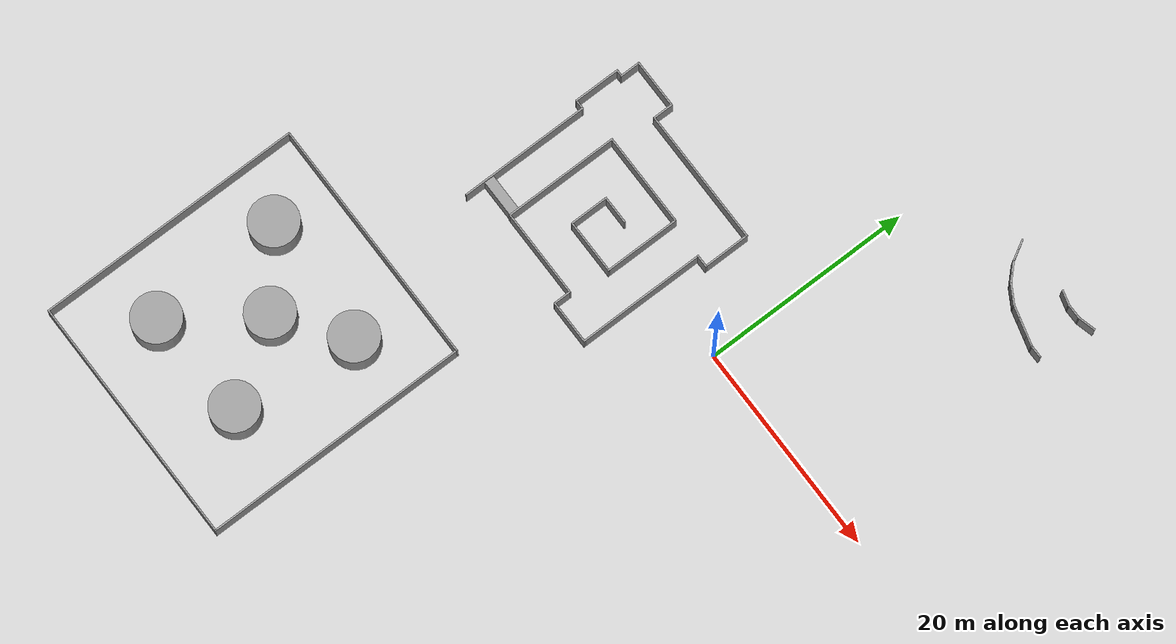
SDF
<sdf version="1.7">
 <world name="default">
  <model name="ground_plane">
   <static>1</static>
   <link name="link">
    <collision name="collision">
     <geometry><plane><normal>0 0 1</normal><size>100 100</size></plane></geometry>
     <surface><friction><ode><mu>100</mu><mu2>50</mu2></ode></friction></surface>
    </collision>
    <visual name="visual">
     <cast_shadows>0</cast_shadows>
     <geometry><plane><normal>0 0 1</normal><size>100 100</size></plane></geometry>
     <material>
      <script><uri>file://media/materials/scripts/gazebo.material</uri><name>Gazebo/Grey</name></script>
     </material>
    </visual>
   </link>
  </model>
  <model name="map1-Scale2.5">
   <pose>-15.2546 0.847586 0 0 -0 0</pose>
   <link name="Wall_100">
    <collision name="Wall_100_Collision">
     <geometry><box><size>7.25 0.15 2.5</size></box></geometry>
     <pose>0 0 1.25 0 -0 0</pose>
    </collision>
    <visual name="Wall_100_Visual">
     <pose>0 0 1.25 0 -0 0</pose>
     <geometry><box><size>7.25 0.15 2.5</size></box></geometry>
     <material>
      <script><uri>file://media/materials/scripts/gazebo.material</uri><name>Gazebo/Grey</name></script>
      <ambient>1 1 1 1</ambient>
     </material>
     <meta><layer>0</layer></meta>
    </visual>
    <pose>4.325 -0.125 0 0 -0 -1.5708</pose>
   </link>
   <link name="Wall_101">
    <collision name="Wall_101_Collision">
     <geometry><box><size>5.25 0.15 2.5</size></box></geometry>
     <pose>0 0 1.25 0 -0 0</pose>
    </collision>
    <visual name="Wall_101_Visual">
     <pose>0 0 1.25 0 -0 0</pose>
     <geometry><box><size>5.25 0.15 2.5</size></box></geometry>
     <material>
      <script><uri>file://media/materials/scripts/gazebo.material</uri><name>Gazebo/Grey</name></script>
      <ambient>1 1 1 1</ambient>
     </material>
     <meta><layer>0</layer></meta>
    </visual>
    <pose>1.775 -3.675 0 0 -0 3.14159</pose>
   </link>
   <link name="Wall_102">
    <collision name="Wall_102_Collision">
     <geometry><box><size>3.75 0.15 2.5</size></box></geometry>
     <pose>0 0 1.25 0 -0 0</pose>
    </collision>
    <visual name="Wall_102_Visual">
     <pose>0 0 1.25 0 -0 0</pose>
     <geometry><box><size>3.75 0.15 2.5</size></box></geometry>
     <material>
      <script><uri>file://media/materials/scripts/gazebo.material</uri><name>Gazebo/Grey</name></script>
      <ambient>1 1 1 1</ambient>
     </material>
     <meta><layer>0</layer></meta>
    </visual>
    <pose>-0.775 -1.875 0 0 -0 1.5708</pose>
   </link>
   <link name="Wall_103">
    <collision name="Wall_103_Collision">
     <geometry><box><size>2.75 0.15 2.5</size></box></geometry>
     <pose>0 0 1.25 0 -0 0</pose>
    </collision>
    <visual name="Wall_103_Visual">
     <pose>0 0 1.25 0 -0 0</pose>
     <geometry><box><size>2.75 0.15 2.5</size></box></geometry>
     <material>
      <script><uri>file://media/materials/scripts/gazebo.material</uri><name>Gazebo/Grey</name></script>
      <ambient>1 1 1 1</ambient>
     </material>
     <meta><layer>0</layer></meta>
    </visual>
    <pose>0.525 -0.075 0 0 -0 0</pose>
   </link>
   <link name="Wall_84">
    <collision name="Wall_84_Collision">
     <geometry><box><size>12.5 0.15 2.5</size></box></geometry>
     <pose>0 0 1.25 0 -0 0</pose>
    </collision>
    <visual name="Wall_84_Visual">
     <pose>0 0 1.25 0 -0 0</pose>
     <geometry><box><size>12.5 0.15 2.5</size></box></geometry>
     <material>
      <script><uri>file://media/materials/scripts/gazebo.material</uri><name>Gazebo/Grey</name></script>
      <ambient>1 1 1 1</ambient>
     </material>
     <meta><layer>0</layer></meta>
    </visual>
    <pose>-8.175 -3.1 0 0 -0 1.5708</pose>
   </link>
   <link name="Wall_85">
    <collision name="Wall_85_Collision">
     <geometry><box><size>1 0.15 2.5</size></box></geometry>
     <pose>0 0 1.25 0 -0 0</pose>
    </collision>
    <visual name="Wall_85_Visual">
     <pose>0 0 1.25 0 -0 0</pose>
     <geometry><box><size>1 0.15 2.5</size></box></geometry>
     <material>
      <script><uri>file://media/materials/scripts/gazebo.material</uri><name>Gazebo/Grey</name></script>
      <ambient>1 1 1 1</ambient>
     </material>
     <meta><layer>0</layer></meta>
    </visual>
    <pose>-8.6 3.075 0 0 -0 3.14159</pose>
   </link>
   <link name="Wall_86">
    <collision name="Wall_86_Collision">
     <geometry><box><size>4.5 0.15 2.5</size></box></geometry>
     <pose>0 0 1.25 0 -0 0</pose>
    </collision>
    <visual name="Wall_86_Visual">
     <pose>0 0 1.25 0 -0 0</pose>
     <geometry><box><size>4.5 0.15 2.5</size></box></geometry>
     <material>
      <script><uri>file://media/materials/scripts/gazebo.material</uri><name>Gazebo/Grey</name></script>
      <ambient>1 1 1 1</ambient>
     </material>
     <meta><layer>0</layer></meta>
    </visual>
    <pose>-9.025 5.25 0 0 -0 1.5708</pose>
   </link>
   <link name="Wall_87">
    <collision name="Wall_87_Collision">
     <geometry><box><size>0.75 0.15 2.5</size></box></geometry>
     <pose>0 0 1.25 0 -0 0</pose>
    </collision>
    <visual name="Wall_87_Visual">
     <pose>0 0 1.25 0 -0 0</pose>
     <geometry><box><size>0.75 0.15 2.5</size></box></geometry>
     <material>
      <script><uri>file://media/materials/scripts/gazebo.material</uri><name>Gazebo/Grey</name></script>
      <ambient>1 1 1 1</ambient>
     </material>
     <meta><layer>0</layer></meta>
    </visual>
    <pose>-8.725 7.425 0 0 -0 0</pose>
   </link>
   <link name="Wall_88">
    <collision name="Wall_88_Collision">
     <geometry><box><size>2 0.15 2.5</size></box></geometry>
     <pose>0 0 1.25 0 -0 0</pose>
    </collision>
    <visual name="Wall_88_Visual">
     <pose>0 0 1.25 0 -0 0</pose>
     <geometry><box><size>2 0.15 2.5</size></box></geometry>
     <material>
      <script><uri>file://media/materials/scripts/gazebo.material</uri><name>Gazebo/Grey</name></script>
      <ambient>1 1 1 1</ambient>
     </material>
     <meta><layer>0</layer></meta>
    </visual>
    <pose>-8.425 8.35 0 0 -0 1.5708</pose>
   </link>
   <link name="Wall_89">
    <collision name="Wall_89_Collision">
     <geometry><box><size>4.75 0.15 2.5</size></box></geometry>
     <pose>0 0 1.25 0 -0 0</pose>
    </collision>
    <visual name="Wall_89_Visual">
     <pose>0 0 1.25 0 -0 0</pose>
     <geometry><box><size>4.75 0.15 2.5</size></box></geometry>
     <material>
      <script><uri>file://media/materials/scripts/gazebo.material</uri><name>Gazebo/Grey</name></script>
      <ambient>1 1 1 1</ambient>
     </material>
     <meta><layer>0</layer></meta>
    </visual>
    <pose>-6.125 9.275 0 0 -0 0</pose>
   </link>
   <link name="Wall_90">
    <collision name="Wall_90_Collision">
     <geometry><box><size>2 0.15 2.5</size></box></geometry>
     <pose>0 0 1.25 0 -0 0</pose>
    </collision>
    <visual name="Wall_90_Visual">
     <pose>0 0 1.25 0 -0 0</pose>
     <geometry><box><size>2 0.15 2.5</size></box></geometry>
     <material>
      <script><uri>file://media/materials/scripts/gazebo.material</uri><name>Gazebo/Grey</name></script>
      <ambient>1 1 1 1</ambient>
     </material>
     <meta><layer>0</layer></meta>
    </visual>
    <pose>-3.825 8.35 0 0 -0 -1.5708</pose>
   </link>
   <link name="Wall_91">
    <collision name="Wall_91_Collision">
     <geometry><box><size>13 0.15 2.5</size></box></geometry>
     <pose>0 0 1.25 0 -0 0</pose>
    </collision>
    <visual name="Wall_91_Visual">
     <pose>0 0 1.25 0 -0 0</pose>
     <geometry><box><size>13 0.15 2.5</size></box></geometry>
     <material>
      <script><uri>file://media/materials/scripts/gazebo.material</uri><name>Gazebo/Grey</name></script>
      <ambient>1 1 1 1</ambient>
     </material>
     <meta><layer>0</layer></meta>
    </visual>
    <pose>2.6 7.425 0 0 -0 0</pose>
   </link>
   <link name="Wall_92">
    <collision name="Wall_92_Collision">
     <geometry><box><size>4.5 0.15 2.5</size></box></geometry>
     <pose>0 0 1.25 0 -0 0</pose>
    </collision>
    <visual name="Wall_92_Visual">
     <pose>0 0 1.25 0 -0 0</pose>
     <geometry><box><size>4.5 0.15 2.5</size></box></geometry>
     <material>
      <script><uri>file://media/materials/scripts/gazebo.material</uri><name>Gazebo/Grey</name></script>
      <ambient>1 1 1 1</ambient>
     </material>
     <meta><layer>0</layer></meta>
    </visual>
    <pose>9.025 5.25 0 0 -0 -1.5708</pose>
   </link>
   <link name="Wall_93">
    <collision name="Wall_93_Collision">
     <geometry><box><size>1.25 0.15 2.5</size></box></geometry>
     <pose>0 0 1.25 0 -0 0</pose>
    </collision>
    <visual name="Wall_93_Visual">
     <pose>0 0 1.25 0 -0 0</pose>
     <geometry><box><size>1.25 0.15 2.5</size></box></geometry>
     <material>
      <script><uri>file://media/materials/scripts/gazebo.material</uri><name>Gazebo/Grey</name></script>
      <ambient>1 1 1 1</ambient>
     </material>
     <meta><layer>0</layer></meta>
    </visual>
    <pose>8.475 3.075 0 0 -0 3.14159</pose>
   </link>
   <link name="Wall_94">
    <collision name="Wall_94_Collision">
     <geometry><box><size>12.25 0.15 2.5</size></box></geometry>
     <pose>0 0 1.25 0 -0 0</pose>
    </collision>
    <visual name="Wall_94_Visual">
     <pose>0 0 1.25 0 -0 0</pose>
     <geometry><box><size>12.25 0.15 2.5</size></box></geometry>
     <material>
      <script><uri>file://media/materials/scripts/gazebo.material</uri><name>Gazebo/Grey</name></script>
      <ambient>1 1 1 1</ambient>
     </material>
     <meta><layer>0</layer></meta>
    </visual>
    <pose>7.925 -2.975 0 0 -0 -1.5708</pose>
   </link>
   <link name="Wall_95">
    <collision name="Wall_95_Collision">
     <geometry><box><size>4.25 0.15 2.5</size></box></geometry>
     <pose>0 0 1.25 0 -0 0</pose>
    </collision>
    <visual name="Wall_95_Visual">
     <pose>0 0 1.25 0 -0 0</pose>
     <geometry><box><size>4.25 0.15 2.5</size></box></geometry>
     <material>
      <script><uri>file://media/materials/scripts/gazebo.material</uri><name>Gazebo/Grey</name></script>
      <ambient>1 1 1 1</ambient>
     </material>
     <meta><layer>0</layer></meta>
    </visual>
    <pose>5.875 -9.025 0 0 -0 3.14159</pose>
   </link>
   <link name="Wall_96">
    <collision name="Wall_96_Collision">
     <geometry><box><size>1.75 0.15 2.5</size></box></geometry>
     <pose>0 0 1.25 0 -0 0</pose>
    </collision>
    <visual name="Wall_96_Visual">
     <pose>0 0 1.25 0 -0 0</pose>
     <geometry><box><size>1.75 0.15 2.5</size></box></geometry>
     <material>
      <script><uri>file://media/materials/scripts/gazebo.material</uri><name>Gazebo/Grey</name></script>
      <ambient>1 1 1 1</ambient>
     </material>
     <meta><layer>0</layer></meta>
    </visual>
    <pose>3.825 -8.225 0 0 -0 1.5708</pose>
   </link>
   <link name="Wall_97">
    <collision name="Wall_97_Collision">
     <geometry><box><size>8.5 0.15 2.5</size></box></geometry>
     <pose>0 0 1.25 0 -0 0</pose>
    </collision>
    <visual name="Wall_97_Visual">
     <pose>0 0 1.25 0 -0 0</pose>
     <geometry><box><size>8.5 0.15 2.5</size></box></geometry>
     <material>
      <script><uri>file://media/materials/scripts/gazebo.material</uri><name>Gazebo/Grey</name></script>
      <ambient>1 1 1 1</ambient>
     </material>
     <meta><layer>0</layer></meta>
    </visual>
    <pose>-0.35 -7.425 0 0 -0 3.14159</pose>
   </link>
   <link name="Wall_98">
    <collision name="Wall_98_Collision">
     <geometry><box><size>11 0.15 2.5</size></box></geometry>
     <pose>0 0 1.25 0 -0 0</pose>
    </collision>
    <visual name="Wall_98_Visual">
     <pose>0 0 1.25 0 -0 0</pose>
     <geometry><box><size>11 0.15 2.5</size></box></geometry>
     <material>
      <script><uri>file://media/materials/scripts/gazebo.material</uri><name>Gazebo/Grey</name></script>
      <ambient>1 1 1 1</ambient>
     </material>
     <meta><layer>0</layer></meta>
    </visual>
    <pose>-4.525 -2 0 0 -0 1.5708</pose>
   </link>
   <link name="Wall_99">
    <collision name="Wall_99_Collision">
     <geometry><box><size>9 0.15 2.5</size></box></geometry>
     <pose>0 0 1.25 0 -0 0</pose>
    </collision>
    <visual name="Wall_99_Visual">
     <pose>0 0 1.25 0 -0 0</pose>
     <geometry><box><size>9 0.15 2.5</size></box></geometry>
     <material>
      <script><uri>file://media/materials/scripts/gazebo.material</uri><name>Gazebo/Grey</name></script>
      <ambient>1 1 1 1</ambient>
     </material>
     <meta><layer>0</layer></meta>
    </visual>
    <pose>-0.1 3.425 0 0 -0 0</pose>
   </link>
   <static>1</static>
  </model>
  <model name="map8-quadrato">
   <pose>-25.0121 -29.8832 0 0 -0 0</pose>
   <link name="Wall_10">
    <collision name="Wall_10_Collision">
     <geometry><box><size>23.75 0.15 2.5</size></box></geometry>
     <pose>0 0 1.25 0 -0 0</pose>
    </collision>
    <visual name="Wall_10_Visual">
     <pose>0 0 1.25 0 -0 0</pose>
     <geometry><box><size>23.75 0.15 2.5</size></box></geometry>
     <material>
      <script><uri>file://media/materials/scripts/gazebo.material</uri><name>Gazebo/Grey</name></script>
      <ambient>1 1 1 1</ambient>
     </material>
     <meta><layer>0</layer></meta>
    </visual>
    <pose>0 12.675 0 0 -0 3.14159</pose>
   </link>
   <link name="Wall_7">
    <collision name="Wall_7_Collision">
     <geometry><box><size>25.5 0.15 2.5</size></box></geometry>
     <pose>0 0 1.25 0 -0 0</pose>
    </collision>
    <visual name="Wall_7_Visual">
     <pose>0 0 1.25 0 -0 0</pose>
     <geometry><box><size>25.5 0.15 2.5</size></box></geometry>
     <material>
      <script><uri>file://media/materials/scripts/gazebo.material</uri><name>Gazebo/Grey</name></script>
      <ambient>1 1 1 1</ambient>
     </material>
     <meta><layer>0</layer></meta>
    </visual>
    <pose>-11.8 -0 0 0 -0 -1.5708</pose>
   </link>
   <link name="Wall_8">
    <collision name="Wall_8_Collision">
     <geometry><box><size>23.75 0.15 2.5</size></box></geometry>
     <pose>0 0 1.25 0 -0 0</pose>
    </collision>
    <visual name="Wall_8_Visual">
     <pose>0 0 1.25 0 -0 0</pose>
     <geometry><box><size>23.75 0.15 2.5</size></box></geometry>
     <material>
      <script><uri>file://media/materials/scripts/gazebo.material</uri><name>Gazebo/Grey</name></script>
      <ambient>1 1 1 1</ambient>
     </material>
     <meta><layer>0</layer></meta>
    </visual>
    <pose>0 -12.675 0 0 -0 0</pose>
   </link>
   <link name="Wall_9">
    <collision name="Wall_9_Collision">
     <geometry><box><size>25.5 0.15 2.5</size></box></geometry>
     <pose>0 0 1.25 0 -0 0</pose>
    </collision>
    <visual name="Wall_9_Visual">
     <pose>0 0 1.25 0 -0 0</pose>
     <geometry><box><size>25.5 0.15 2.5</size></box></geometry>
     <material>
      <script><uri>file://media/materials/scripts/gazebo.material</uri><name>Gazebo/Grey</name></script>
      <ambient>1 1 1 1</ambient>
     </material>
     <meta><layer>0</layer></meta>
    </visual>
    <pose>11.8 -0 0 0 -0 1.5708</pose>
   </link>
   <static>1</static>
  </model>
  <model name="map4-otto">
   <pose>24.785 39.2572 0 0 -0 0</pose>
   <link name="Wall_160">
    <collision name="Wall_160_Collision">
     <geometry><box><size>1 0.15 2.5</size></box></geometry>
     <pose>0 0 1.25 0 -0 0</pose>
    </collision>
    <visual name="Wall_160_Visual">
     <pose>0 0 1.25 0 -0 0</pose>
     <geometry><box><size>1 0.15 2.5</size></box></geometry>
     <material>
      <script><uri>file://media/materials/scripts/gazebo.material</uri><name>Gazebo/Grey</name></script>
      <ambient>1 1 1 1</ambient>
     </material>
     <meta><layer>0</layer></meta>
    </visual>
    <pose>-16.3779 -13.0223 0 0 -0 -1.0472</pose>
   </link>
   <link name="Wall_161">
    <collision name="Wall_161_Collision">
     <geometry><box><size>1.25 0.15 2.5</size></box></geometry>
     <pose>0 0 1.25 0 -0 0</pose>
    </collision>
    <visual name="Wall_161_Visual">
     <pose>0 0 1.25 0 -0 0</pose>
     <geometry><box><size>1.25 0.15 2.5</size></box></geometry>
     <material>
      <script><uri>file://media/materials/scripts/gazebo.material</uri><name>Gazebo/Grey</name></script>
      <ambient>1 1 1 1</ambient>
     </material>
     <meta><layer>0</layer></meta>
    </visual>
    <pose>-15.8904 -13.8667 0 0 -0 -1.0472</pose>
   </link>
   <link name="Wall_162">
    <collision name="Wall_162_Collision">
     <geometry><box><size>1.25 0.15 2.5</size></box></geometry>
     <pose>0 0 1.25 0 -0 0</pose>
    </collision>
    <visual name="Wall_162_Visual">
     <pose>0 0 1.25 0 -0 0</pose>
     <geometry><box><size>1.25 0.15 2.5</size></box></geometry>
     <material>
      <script><uri>file://media/materials/scripts/gazebo.material</uri><name>Gazebo/Grey</name></script>
      <ambient>1 1 1 1</ambient>
     </material>
     <meta><layer>0</layer></meta>
    </visual>
    <pose>-15.2264 -14.7319 0 0 -0 -0.785398</pose>
   </link>
   <link name="Wall_163">
    <collision name="Wall_163_Collision">
     <geometry><box><size>1 0.15 2.5</size></box></geometry>
     <pose>0 0 1.25 0 -0 0</pose>
    </collision>
    <visual name="Wall_163_Visual">
     <pose>0 0 1.25 0 -0 0</pose>
     <geometry><box><size>1 0.15 2.5</size></box></geometry>
     <material>
      <script><uri>file://media/materials/scripts/gazebo.material</uri><name>Gazebo/Grey</name></script>
      <ambient>1 1 1 1</ambient>
     </material>
     <meta><layer>0</layer></meta>
    </visual>
    <pose>-14.537 -15.4214 0 0 -0 -0.785398</pose>
   </link>
   <link name="Wall_164">
    <collision name="Wall_164_Collision">
     <geometry><box><size>1.25 0.15 2.5</size></box></geometry>
     <pose>0 0 1.25 0 -0 0</pose>
    </collision>
    <visual name="Wall_164_Visual">
     <pose>0 0 1.25 0 -0 0</pose>
     <geometry><box><size>1.25 0.15 2.5</size></box></geometry>
     <material>
      <script><uri>file://media/materials/scripts/gazebo.material</uri><name>Gazebo/Grey</name></script>
      <ambient>1 1 1 1</ambient>
     </material>
     <meta><layer>0</layer></meta>
    </visual>
    <pose>-13.7602 -15.9969 0 0 -0 -0.523599</pose>
   </link>
   <link name="Wall_165">
    <collision name="Wall_165_Collision">
     <geometry><box><size>1 0.15 2.5</size></box></geometry>
     <pose>0 0 1.25 0 -0 0</pose>
    </collision>
    <visual name="Wall_165_Visual">
     <pose>0 0 1.25 0 -0 0</pose>
     <geometry><box><size>1 0.15 2.5</size></box></geometry>
     <material>
      <script><uri>file://media/materials/scripts/gazebo.material</uri><name>Gazebo/Grey</name></script>
      <ambient>1 1 1 1</ambient>
     </material>
     <meta><layer>0</layer></meta>
    </visual>
    <pose>-12.9158 -16.4844 0 0 -0 -0.523599</pose>
   </link>
   <link name="Wall_166">
    <collision name="Wall_166_Collision">
     <geometry><box><size>1.25 0.15 2.5</size></box></geometry>
     <pose>0 0 1.25 0 -0 0</pose>
    </collision>
    <visual name="Wall_166_Visual">
     <pose>0 0 1.25 0 -0 0</pose>
     <geometry><box><size>1.25 0.15 2.5</size></box></geometry>
     <material>
      <script><uri>file://media/materials/scripts/gazebo.material</uri><name>Gazebo/Grey</name></script>
      <ambient>1 1 1 1</ambient>
     </material>
     <meta><layer>0</layer></meta>
    </visual>
    <pose>-12.0165 -16.8392 0 0 -0 -0.261799</pose>
   </link>
   <link name="Wall_167">
    <collision name="Wall_167_Collision">
     <geometry><box><size>1.75 0.15 2.5</size></box></geometry>
     <pose>0 0 1.25 0 -0 0</pose>
    </collision>
    <visual name="Wall_167_Visual">
     <pose>0 0 1.25 0 -0 0</pose>
     <geometry><box><size>1.75 0.15 2.5</size></box></geometry>
     <material>
      <script><uri>file://media/materials/scripts/gazebo.material</uri><name>Gazebo/Grey</name></script>
      <ambient>1 1 1 1</ambient>
     </material>
     <meta><layer>0</layer></meta>
    </visual>
    <pose>-10.7125 -17.1886 0 0 -0 -0.261799</pose>
   </link>
   <link name="Wall_168">
    <collision name="Wall_168_Collision">
     <geometry><box><size>1.25 0.15 2.5</size></box></geometry>
     <pose>0 0 1.25 0 -0 0</pose>
    </collision>
    <visual name="Wall_168_Visual">
     <pose>0 0 1.25 0 -0 0</pose>
     <geometry><box><size>1.25 0.15 2.5</size></box></geometry>
     <material>
      <script><uri>file://media/materials/scripts/gazebo.material</uri><name>Gazebo/Grey</name></script>
      <ambient>1 1 1 1</ambient>
     </material>
     <meta><layer>0</layer></meta>
    </visual>
    <pose>-9.40849 -17.538 0 0 -0 -0.261799</pose>
   </link>
   <link name="Wall_169">
    <collision name="Wall_169_Collision">
     <geometry><box><size>1.25 0.15 2.5</size></box></geometry>
     <pose>0 0 1.25 0 -0 0</pose>
    </collision>
    <visual name="Wall_169_Visual">
     <pose>0 0 1.25 0 -0 0</pose>
     <geometry><box><size>1.25 0.15 2.5</size></box></geometry>
     <material>
      <script><uri>file://media/materials/scripts/gazebo.material</uri><name>Gazebo/Grey</name></script>
      <ambient>1 1 1 1</ambient>
     </material>
     <meta><layer>0</layer></meta>
    </visual>
    <pose>-8.32723 -17.6804 0 0 -0 0</pose>
   </link>
   <link name="Wall_67">
    <collision name="Wall_67_Collision">
     <geometry><box><size>1.5 0.15 2.5</size></box></geometry>
     <pose>0 0 1.25 0 -0 0</pose>
    </collision>
    <visual name="Wall_67_Visual">
     <pose>0 0 1.25 0 -0 0</pose>
     <geometry><box><size>1.5 0.15 2.5</size></box></geometry>
     <material>
      <script><uri>file://media/materials/scripts/gazebo.material</uri><name>Gazebo/Grey</name></script>
      <ambient>1 1 1 1</ambient>
     </material>
     <meta><layer>0</layer></meta>
    </visual>
    <pose>-10.4036 -12.8238 0 0 -0 -0.261799</pose>
   </link>
   <link name="Wall_68">
    <collision name="Wall_68_Collision">
     <geometry><box><size>1.5 0.15 2.5</size></box></geometry>
     <pose>0 0 1.25 0 -0 0</pose>
    </collision>
    <visual name="Wall_68_Visual">
     <pose>0 0 1.25 0 -0 0</pose>
     <geometry><box><size>1.5 0.15 2.5</size></box></geometry>
     <material>
      <script><uri>file://media/materials/scripts/gazebo.material</uri><name>Gazebo/Grey</name></script>
      <ambient>1 1 1 1</ambient>
     </material>
     <meta><layer>0</layer></meta>
    </visual>
    <pose>-9.07665 -12.9985 0 0 -0 0</pose>
   </link>
   <link name="Wall_69">
    <collision name="Wall_69_Collision">
     <geometry><box><size>1.75 0.15 2.5</size></box></geometry>
     <pose>0 0 1.25 0 -0 0</pose>
    </collision>
    <visual name="Wall_69_Visual">
     <pose>0 0 1.25 0 -0 0</pose>
     <geometry><box><size>1.75 0.15 2.5</size></box></geometry>
     <material>
      <script><uri>file://media/materials/scripts/gazebo.material</uri><name>Gazebo/Grey</name></script>
      <ambient>1 1 1 1</ambient>
     </material>
     <meta><layer>0</layer></meta>
    </visual>
    <pose>-7.62891 -12.7914 0 0 -0 0.261799</pose>
   </link>
   <static>1</static>
  </model>
  <model name="cubo_statico">
   <link name="link">
    <inertial>
     <mass>1</mass>
     <inertia><ixx>0.145833</ixx><ixy>0</ixy><ixz>0</ixz><iyy>0.145833</iyy><iyz>0</iyz><izz>0.125</izz></inertia>
    </inertial>
    <visual name="visual">
     <geometry><cylinder><radius>2.29556</radius><length>5.73977</length></cylinder></geometry>
     <material>
      <script><name>Gazebo/Grey</name><uri>file://media/materials/scripts/gazebo.material</uri></script>
      <shader type="pixel"/>
     </material>
    </visual>
    <collision name="collision">
     <geometry><cylinder><radius>2.29556</radius><length>5.73977</length></cylinder></geometry>
     <surface>
      <friction>
       <ode><mu>1</mu><mu2>1</mu2><fdir1>0 0 0</fdir1><slip1>0</slip1><slip2>0</slip2></ode>
       <torsional>
        <coefficient>1</coefficient>
        <patch_radius>0</patch_radius>
        <surface_radius>0</surface_radius>
        <use_patch_radius>1</use_patch_radius>
        <ode><slip>0</slip></ode>
       </torsional>
      </friction>
      <bounce><restitution_coefficient>0</restitution_coefficient><threshold>1e+06</threshold></bounce>
      <contact>
       <collide_without_contact>0</collide_without_contact>
       <collide_without_contact_bitmask>1</collide_without_contact_bitmask>
       <collide_bitmask>1</collide_bitmask>
       <ode>
        <soft_cfm>0</soft_cfm>
        <soft_erp>0.2</soft_erp>
        <kp>1e+13</kp>
        <kd>1</kd>
        <max_vel>0.01</max_vel>
        <min_depth>0</min_depth>
       </ode>
       <bullet>
        <split_impulse>1</split_impulse>
        <split_impulse_penetration_threshold>-0.01</split_impulse_penetration_threshold>
        <soft_cfm>0</soft_cfm>
        <soft_erp>0.2</soft_erp>
        <kp>1e+13</kp>
        <kd>1</kd>
       </bullet>
      </contact>
     </surface>
    </collision>
   </link>
   <static>1</static>
   <pose>-20.5788 -35.0257 0.5 0 -0 0</pose>
  </model>
  <model name="cubo_statico_clone">
   <link name="link">
    <inertial>
     <mass>1</mass>
     <inertia><ixx>0.145833</ixx><ixy>0</ixy><ixz>0</ixz><iyy>0.145833</iyy><iyz>0</iyz><izz>0.125</izz></inertia>
    </inertial>
    <visual name="visual">
     <geometry><cylinder><radius>2.29556</radius><length>5.73977</length></cylinder></geometry>
     <material>
      <script><name>Gazebo/Grey</name><uri>file://media/materials/scripts/gazebo.material</uri></script>
      <shader type="pixel"/>
     </material>
    </visual>
    <collision name="collision">
     <geometry><cylinder><radius>2.29556</radius><length>5.73977</length></cylinder></geometry>
     <surface>
      <friction>
       <ode><mu>1</mu><mu2>1</mu2><fdir1>0 0 0</fdir1><slip1>0</slip1><slip2>0</slip2></ode>
       <torsional>
        <coefficient>1</coefficient>
        <patch_radius>0</patch_radius>
        <surface_radius>0</surface_radius>
        <use_patch_radius>1</use_patch_radius>
        <ode><slip>0</slip></ode>
       </torsional>
      </friction>
      <bounce><restitution_coefficient>0</restitution_coefficient><threshold>1e+06</threshold></bounce>
      <contact>
       <collide_without_contact>0</collide_without_contact>
       <collide_without_contact_bitmask>1</collide_without_contact_bitmask>
       <collide_bitmask>1</collide_bitmask>
       <ode>
        <soft_cfm>0</soft_cfm>
        <soft_erp>0.2</soft_erp>
        <kp>1e+13</kp>
        <kd>1</kd>
        <max_vel>0.01</max_vel>
        <min_depth>0</min_depth>
       </ode>
       <bullet>
        <split_impulse>1</split_impulse>
        <split_impulse_penetration_threshold>-0.01</split_impulse_penetration_threshold>
        <soft_cfm>0</soft_cfm>
        <soft_erp>0.2</soft_erp>
        <kp>1e+13</kp>
        <kd>1</kd>
       </bullet>
      </contact>
     </surface>
    </collision>
   </link>
   <static>1</static>
   <pose>-30.6616 -35.7308 0.5 0 -0 0</pose>
  </model>
  <model name="cubo_statico_clone_0">
   <link name="link">
    <inertial>
     <mass>1</mass>
     <inertia><ixx>0.145833</ixx><ixy>0</ixy><ixz>0</ixz><iyy>0.145833</iyy><iyz>0</iyz><izz>0.125</izz></inertia>
    </inertial>
    <visual name="visual">
     <geometry><cylinder><radius>2.29556</radius><length>5.73977</length></cylinder></geometry>
     <material>
      <script><name>Gazebo/Grey</name><uri>file://media/materials/scripts/gazebo.material</uri></script>
      <shader type="pixel"/>
     </material>
    </visual>
    <collision name="collision">
     <geometry><cylinder><radius>2.29556</radius><length>5.73977</length></cylinder></geometry>
     <surface>
      <friction>
       <ode><mu>1</mu><mu2>1</mu2><fdir1>0 0 0</fdir1><slip1>0</slip1><slip2>0</slip2></ode>
       <torsional>
        <coefficient>1</coefficient>
        <patch_radius>0</patch_radius>
        <surface_radius>0</surface_radius>
        <use_patch_radius>1</use_patch_radius>
        <ode><slip>0</slip></ode>
       </torsional>
      </friction>
      <bounce><restitution_coefficient>0</restitution_coefficient><threshold>1e+06</threshold></bounce>
      <contact>
       <collide_without_contact>0</collide_without_contact>
       <collide_without_contact_bitmask>1</collide_without_contact_bitmask>
       <collide_bitmask>1</collide_bitmask>
       <ode>
        <soft_cfm>0</soft_cfm>
        <soft_erp>0.2</soft_erp>
        <kp>1e+13</kp>
        <kd>1</kd>
        <max_vel>0.01</max_vel>
        <min_depth>0</min_depth>
       </ode>
       <bullet>
        <split_impulse>1</split_impulse>
        <split_impulse_penetration_threshold>-0.01</split_impulse_penetration_threshold>
        <soft_cfm>0</soft_cfm>
        <soft_erp>0.2</soft_erp>
        <kp>1e+13</kp>
        <kd>1</kd>
       </bullet>
      </contact>
     </surface>
    </collision>
   </link>
   <static>1</static>
   <pose>-31.3039 -22.8976 0.5 0 -0 0</pose>
  </model>
  <model name="cubo_statico_clone_0_clone">
   <link name="link">
    <inertial>
     <mass>1</mass>
     <inertia><ixx>0.145833</ixx><ixy>0</ixy><ixz>0</ixz><iyy>0.145833</iyy><iyz>0</iyz><izz>0.125</izz></inertia>
    </inertial>
    <visual name="visual">
     <geometry><cylinder><radius>2.29556</radius><length>5.73977</length></cylinder></geometry>
     <material>
      <script><name>Gazebo/Grey</name><uri>file://media/materials/scripts/gazebo.material</uri></script>
      <shader type="pixel"/>
     </material>
    </visual>
    <collision name="collision">
     <geometry><cylinder><radius>2.29556</radius><length>5.73977</length></cylinder></geometry>
     <surface>
      <friction>
       <ode><mu>1</mu><mu2>1</mu2><fdir1>0 0 0</fdir1><slip1>0</slip1><slip2>0</slip2></ode>
       <torsional>
        <coefficient>1</coefficient>
        <patch_radius>0</patch_radius>
        <surface_radius>0</surface_radius>
        <use_patch_radius>1</use_patch_radius>
        <ode><slip>0</slip></ode>
       </torsional>
      </friction>
      <bounce><restitution_coefficient>0</restitution_coefficient><threshold>1e+06</threshold></bounce>
      <contact>
       <collide_without_contact>0</collide_without_contact>
       <collide_without_contact_bitmask>1</collide_without_contact_bitmask>
       <collide_bitmask>1</collide_bitmask>
       <ode>
        <soft_cfm>0</soft_cfm>
        <soft_erp>0.2</soft_erp>
        <kp>1e+13</kp>
        <kd>1</kd>
        <max_vel>0.01</max_vel>
        <min_depth>0</min_depth>
       </ode>
       <bullet>
        <split_impulse>1</split_impulse>
        <split_impulse_penetration_threshold>-0.01</split_impulse_penetration_threshold>
        <soft_cfm>0</soft_cfm>
        <soft_erp>0.2</soft_erp>
        <kp>1e+13</kp>
        <kd>1</kd>
       </bullet>
      </contact>
     </surface>
    </collision>
   </link>
   <static>1</static>
   <pose>-19.2844 -23.4384 0.5 0 -0 0</pose>
  </model>
  <model name="cubo_statico_clone_0_clone_0">
   <link name="link">
    <inertial>
     <mass>1</mass>
     <inertia><ixx>0.145833</ixx><ixy>0</ixy><ixz>0</ixz><iyy>0.145833</iyy><iyz>0</iyz><izz>0.125</izz></inertia>
    </inertial>
    <visual name="visual">
     <geometry><cylinder><radius>2.29556</radius><length>5.73977</length></cylinder></geometry>
     <material>
      <script><name>Gazebo/Grey</name><uri>file://media/materials/scripts/gazebo.material</uri></script>
      <shader type="pixel"/>
     </material>
    </visual>
    <collision name="collision">
     <geometry><cylinder><radius>2.29556</radius><length>5.73977</length></cylinder></geometry>
     <surface>
      <friction>
       <ode><mu>1</mu><mu2>1</mu2><fdir1>0 0 0</fdir1><slip1>0</slip1><slip2>0</slip2></ode>
       <torsional>
        <coefficient>1</coefficient>
        <patch_radius>0</patch_radius>
        <surface_radius>0</surface_radius>
        <use_patch_radius>1</use_patch_radius>
        <ode><slip>0</slip></ode>
       </torsional>
      </friction>
      <bounce><restitution_coefficient>0</restitution_coefficient><threshold>1e+06</threshold></bounce>
      <contact>
       <collide_without_contact>0</collide_without_contact>
       <collide_without_contact_bitmask>1</collide_without_contact_bitmask>
       <collide_bitmask>1</collide_bitmask>
       <ode>
        <soft_cfm>0</soft_cfm>
        <soft_erp>0.2</soft_erp>
        <kp>1e+13</kp>
        <kd>1</kd>
        <max_vel>0.01</max_vel>
        <min_depth>0</min_depth>
       </ode>
       <bullet>
        <split_impulse>1</split_impulse>
        <split_impulse_penetration_threshold>-0.01</split_impulse_penetration_threshold>
        <soft_cfm>0</soft_cfm>
        <soft_erp>0.2</soft_erp>
        <kp>1e+13</kp>
        <kd>1</kd>
       </bullet>
      </contact>
     </surface>
    </collision>
   </link>
   <static>1</static>
   <pose>-25.2106 -27.8494 0.5 0 -0 0</pose>
  </model>
  <model name="box_static">
   <link name="link">
    <inertial>
     <mass>1</mass>
     <inertia>
      <ixx>0.166667</ixx>
      <ixy>0</ixy>
      <ixz>0</ixz>
      <iyy>0.166667</iyy>
      <iyz>0</iyz>
      <izz>0.166667</izz>
     </inertia>
    </inertial>
    <visual name="visual">
     <geometry><box><size>0.00195889 0.958828 0.0132324</size></box></geometry>
     <material>
      <script><name>Gazebo/Grey</name><uri>file://media/materials/scripts/gazebo.material</uri></script>
      <shader type="pixel"/>
     </material>
    </visual>
    <collision name="collision">
     <geometry><box><size>0.00195889 0.958828 0.0132324</size></box></geometry>
     <surface>
      <friction>
       <ode><mu>1</mu><mu2>1</mu2><fdir1>0 0 0</fdir1><slip1>0</slip1><slip2>0</slip2></ode>
       <torsional>
        <coefficient>1</coefficient>
        <patch_radius>0</patch_radius>
        <surface_radius>0</surface_radius>
        <use_patch_radius>1</use_patch_radius>
        <ode><slip>0</slip></ode>
       </torsional>
      </friction>
      <bounce><restitution_coefficient>0</restitution_coefficient><threshold>1e+06</threshold></bounce>
      <contact>
       <collide_without_contact>0</collide_without_contact>
       <collide_without_contact_bitmask>1</collide_without_contact_bitmask>
       <collide_bitmask>1</collide_bitmask>
       <ode>
        <soft_cfm>0</soft_cfm>
        <soft_erp>0.2</soft_erp>
        <kp>1e+13</kp>
        <kd>1</kd>
        <max_vel>0.01</max_vel>
        <min_depth>0</min_depth>
       </ode>
       <bullet>
        <split_impulse>1</split_impulse>
        <split_impulse_penetration_threshold>-0.01</split_impulse_penetration_threshold>
        <soft_cfm>0</soft_cfm>
        <soft_erp>0.2</soft_erp>
        <kp>1e+13</kp>
        <kd>1</kd>
       </bullet>
      </contact>
     </surface>
    </collision>
   </link>
   <static>1</static>
   <pose>-21.6038 -6.22045 1.06853 1e-06 -1e-06 -0.000426</pose>
  </model>
  <model name="box_static_0">
   <link name="link">
    <inertial>
     <mass>1</mass>
     <inertia>
      <ixx>0.166667</ixx>
      <ixy>0</ixy>
      <ixz>0</ixz>
      <iyy>0.166667</iyy>
      <iyz>0</iyz>
      <izz>0.166667</izz>
     </inertia>
    </inertial>
    <visual name="visual">
     <geometry><box><size>3.58339 0.958828 4.45081</size></box></geometry>
     <material>
      <script><name>Gazebo/Grey</name><uri>file://media/materials/scripts/gazebo.material</uri></script>
      <shader type="pixel"/>
     </material>
    </visual>
    <collision name="collision">
     <geometry><box><size>3.58339 0.958828 4.45081</size></box></geometry>
     <surface>
      <friction>
       <ode><mu>1</mu><mu2>1</mu2><fdir1>0 0 0</fdir1><slip1>0</slip1><slip2>0</slip2></ode>
       <torsional>
        <coefficient>1</coefficient>
        <patch_radius>0</patch_radius>
        <surface_radius>0</surface_radius>
        <use_patch_radius>1</use_patch_radius>
        <ode><slip>0</slip></ode>
       </torsional>
      </friction>
      <bounce><restitution_coefficient>0</restitution_coefficient><threshold>1e+06</threshold></bounce>
      <contact>
       <collide_without_contact>0</collide_without_contact>
       <collide_without_contact_bitmask>1</collide_without_contact_bitmask>
       <collide_bitmask>1</collide_bitmask>
       <ode>
        <soft_cfm>0</soft_cfm>
        <soft_erp>0.2</soft_erp>
        <kp>1e+13</kp>
        <kd>1</kd>
        <max_vel>0.01</max_vel>
        <min_depth>0</min_depth>
       </ode>
       <bullet>
        <split_impulse>1</split_impulse>
        <split_impulse_penetration_threshold>-0.01</split_impulse_penetration_threshold>
        <soft_cfm>0</soft_cfm>
        <soft_erp>0.2</soft_erp>
        <kp>1e+13</kp>
        <kd>1</kd>
       </bullet>
      </contact>
     </surface>
    </collision>
   </link>
   <static>1</static>
   <pose>-21.6574 -6.08993 0 0 -0 0</pose>
   <plugin name="gazebo_ros_state" filename="libgazebo_ros_state.so">
    <ros><namespace>/gazebo</namespace></ros>
    <update_rate>1.0</update_rate>
   </plugin>
  </model>
 </world>
</sdf>
